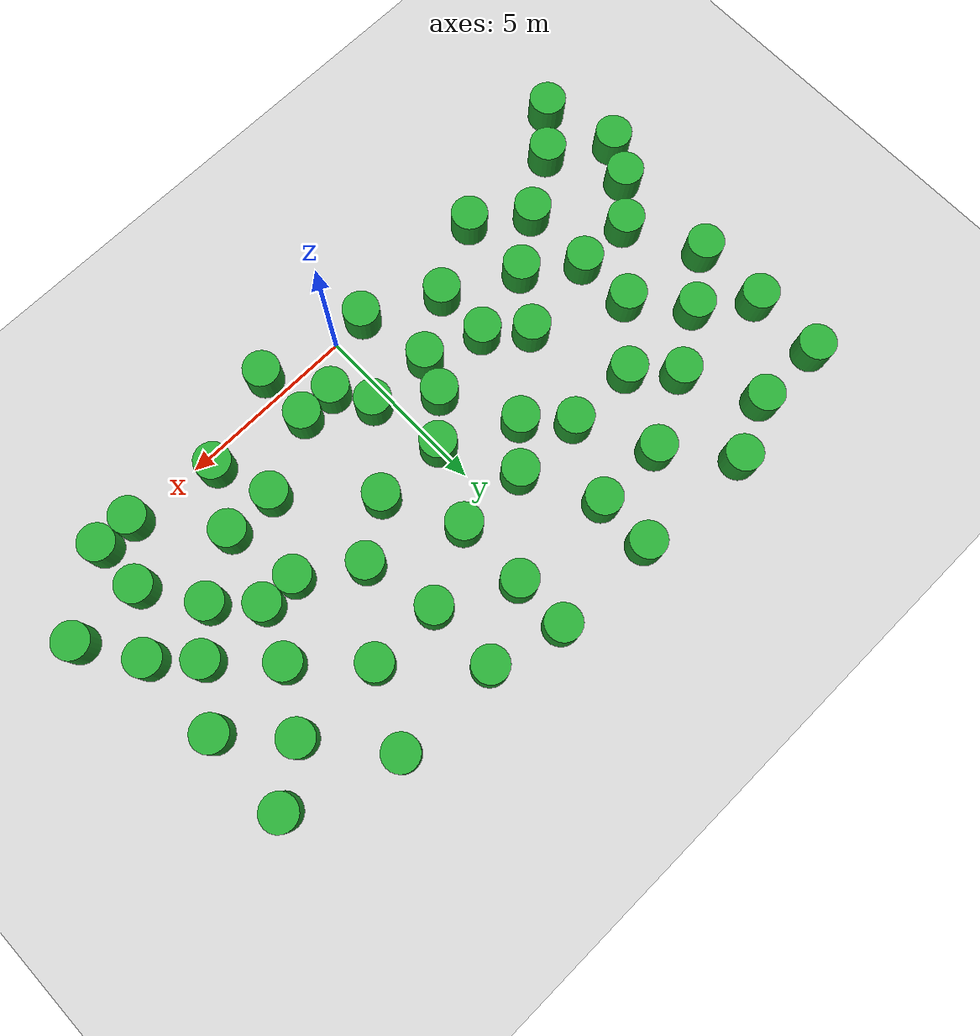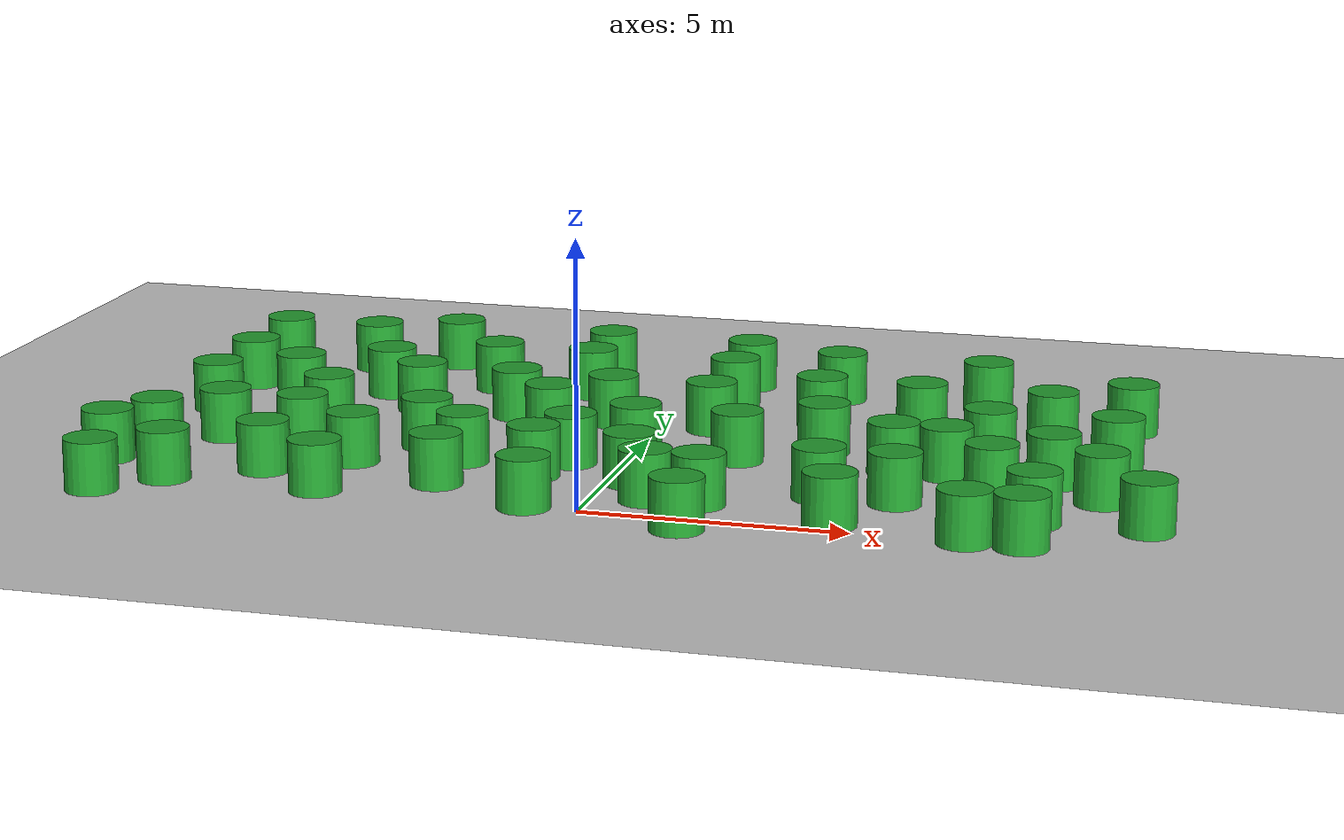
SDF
<sdf version="1.6">
 <world name="default">
  <model name="ground_plane">
   <static>1</static>
   <link name="link">
    <collision name="collision">
     <geometry><plane><normal>0 0 1</normal><size>100 100</size></plane></geometry>
     <surface><friction><ode><mu>100</mu><mu2>50</mu2></ode></friction></surface>
    </collision>
    <visual name="visual">
     <cast_shadows>0</cast_shadows>
     <geometry><plane><normal>0 0 1</normal><size>100 100</size></plane></geometry>
     <material>
      <script><uri>file://media/materials/scripts/gazebo.material</uri><name>Gazebo/Gray</name></script>
     </material>
    </visual>
   </link>
  </model>
  <model name="unit_cylinder_clone_9">
   <pose>-8 -3e-06 0.499997 3e-06 1e-06 -0</pose>
   <link name="link">
    <inertial>
     <mass>1</mass>
     <inertia><ixx>0.145833</ixx><ixy>0</ixy><ixz>0</ixz><iyy>0.145833</iyy><iyz>0</iyz><izz>0.125</izz></inertia>
    </inertial>
    <collision name="collision">
     <geometry><cylinder><radius>0.5</radius><length>1</length></cylinder></geometry>
    </collision>
    <visual name="visual">
     <geometry><cylinder><radius>0.5</radius><length>1</length></cylinder></geometry>
     <material>
      <script><name>Gazebo/Green</name><uri>file://media/materials/scripts/gazebo.material</uri></script>
     </material>
    </visual>
   </link>
  </model>
  <model name="unit_cylinder_clone_10">
   <pose>-6.41645 1 0.499997 3e-06 1e-06 -0</pose>
   <link name="link">
    <inertial>
     <mass>1</mass>
     <inertia><ixx>0.145833</ixx><ixy>0</ixy><ixz>0</ixz><iyy>0.145833</iyy><iyz>0</iyz><izz>0.125</izz></inertia>
    </inertial>
    <collision name="collision">
     <geometry><cylinder><radius>0.5</radius><length>1</length></cylinder></geometry>
    </collision>
    <visual name="visual">
     <geometry><cylinder><radius>0.5</radius><length>1</length></cylinder></geometry>
     <material>
      <script><name>Gazebo/Green</name><uri>file://media/materials/scripts/gazebo.material</uri></script>
     </material>
    </visual>
   </link>
  </model>
  <model name="unit_cylinder_clone_11">
   <pose>-5 2 0.499994 -3e-06 -2e-06 0</pose>
   <link name="link">
    <inertial>
     <mass>1</mass>
     <inertia><ixx>0.145833</ixx><ixy>0</ixy><ixz>0</ixz><iyy>0.145833</iyy><iyz>0</iyz><izz>0.125</izz></inertia>
    </inertial>
    <collision name="collision">
     <geometry><cylinder><radius>0.5</radius><length>1</length></cylinder></geometry>
    </collision>
    <visual name="visual">
     <geometry><cylinder><radius>0.5</radius><length>1</length></cylinder></geometry>
     <material>
      <script><name>Gazebo/Green</name><uri>file://media/materials/scripts/gazebo.material</uri></script>
     </material>
    </visual>
   </link>
  </model>
  <model name="unit_cylinder_clone_12">
   <pose>-3 1 0.499997 3e-06 1e-06 -0</pose>
   <link name="link">
    <inertial>
     <mass>1</mass>
     <inertia><ixx>0.145833</ixx><ixy>0</ixy><ixz>0</ixz><iyy>0.145833</iyy><iyz>0</iyz><izz>0.125</izz></inertia>
    </inertial>
    <collision name="collision">
     <geometry><cylinder><radius>0.5</radius><length>1</length></cylinder></geometry>
    </collision>
    <visual name="visual">
     <geometry><cylinder><radius>0.5</radius><length>1</length></cylinder></geometry>
     <material>
      <script><name>Gazebo/Green</name><uri>file://media/materials/scripts/gazebo.material</uri></script>
     </material>
    </visual>
   </link>
  </model>
  <model name="unit_cylinder_clone_13">
   <pose>-1 -3e-06 0.499996 3e-06 1e-06 -0</pose>
   <link name="link">
    <inertial>
     <mass>1</mass>
     <inertia><ixx>0.145833</ixx><ixy>0</ixy><ixz>0</ixz><iyy>0.145833</iyy><iyz>0</iyz><izz>0.125</izz></inertia>
    </inertial>
    <collision name="collision">
     <geometry><cylinder><radius>0.5</radius><length>1</length></cylinder></geometry>
    </collision>
    <visual name="visual">
     <geometry><cylinder><radius>0.5</radius><length>1</length></cylinder></geometry>
     <material>
      <script><name>Gazebo/Green</name><uri>file://media/materials/scripts/gazebo.material</uri></script>
     </material>
    </visual>
   </link>
  </model>
  <model name="unit_cylinder_clone_22">
   <pose>7.00001 -0 0.499997 3e-06 2e-06 0</pose>
   <link name="link">
    <inertial>
     <mass>1</mass>
     <inertia><ixx>0.145833</ixx><ixy>0</ixy><ixz>0</ixz><iyy>0.145833</iyy><iyz>0</iyz><izz>0.125</izz></inertia>
    </inertial>
    <collision name="collision">
     <geometry><cylinder><radius>0.5</radius><length>1</length></cylinder></geometry>
    </collision>
    <visual name="visual">
     <geometry><cylinder><radius>0.5</radius><length>1</length></cylinder></geometry>
     <material>
      <script><name>Gazebo/Green</name><uri>file://media/materials/scripts/gazebo.material</uri></script>
     </material>
    </visual>
   </link>
  </model>
  <model name="unit_cylinder_clone_23">
   <pose>8.00001 0 0.5 0 0 -4e-06</pose>
   <link name="link">
    <inertial>
     <mass>1</mass>
     <inertia><ixx>0.145833</ixx><ixy>0</ixy><ixz>0</ixz><iyy>0.145833</iyy><iyz>0</iyz><izz>0.125</izz></inertia>
    </inertial>
    <collision name="collision">
     <geometry><cylinder><radius>0.5</radius><length>1</length></cylinder></geometry>
    </collision>
    <visual name="visual">
     <geometry><cylinder><radius>0.5</radius><length>1</length></cylinder></geometry>
     <material>
      <script><name>Gazebo/Green</name><uri>file://media/materials/scripts/gazebo.material</uri></script>
     </material>
    </visual>
   </link>
  </model>
  <model name="unit_cylinder_clone_24">
   <pose>8 4 0.499997 3e-06 2e-06 0</pose>
   <link name="link">
    <inertial>
     <mass>1</mass>
     <inertia><ixx>0.145833</ixx><ixy>0</ixy><ixz>0</ixz><iyy>0.145833</iyy><iyz>0</iyz><izz>0.125</izz></inertia>
    </inertial>
    <collision name="collision">
     <geometry><cylinder><radius>0.5</radius><length>1</length></cylinder></geometry>
    </collision>
    <visual name="visual">
     <geometry><cylinder><radius>0.5</radius><length>1</length></cylinder></geometry>
     <material>
      <script><name>Gazebo/Green</name><uri>file://media/materials/scripts/gazebo.material</uri></script>
     </material>
    </visual>
   </link>
  </model>
  <model name="unit_cylinder_clone_25">
   <pose>5 4 0.49837 3e-06 2e-06 0</pose>
   <link name="link">
    <inertial>
     <mass>1</mass>
     <inertia><ixx>0.145833</ixx><ixy>0</ixy><ixz>0</ixz><iyy>0.145833</iyy><iyz>0</iyz><izz>0.125</izz></inertia>
    </inertial>
    <collision name="collision">
     <geometry><cylinder><radius>0.5</radius><length>1</length></cylinder></geometry>
    </collision>
    <visual name="visual">
     <geometry><cylinder><radius>0.5</radius><length>1</length></cylinder></geometry>
     <material>
      <script><name>Gazebo/Green</name><uri>file://media/materials/scripts/gazebo.material</uri></script>
     </material>
    </visual>
   </link>
  </model>
  <model name="unit_cylinder_clone_26">
   <pose>4 2 0.499994 -3e-06 -2e-06 0</pose>
   <link name="link">
    <inertial>
     <mass>1</mass>
     <inertia><ixx>0.145833</ixx><ixy>0</ixy><ixz>0</ixz><iyy>0.145833</iyy><iyz>0</iyz><izz>0.125</izz></inertia>
    </inertial>
    <collision name="collision">
     <geometry><cylinder><radius>0.5</radius><length>1</length></cylinder></geometry>
    </collision>
    <visual name="visual">
     <geometry><cylinder><radius>0.5</radius><length>1</length></cylinder></geometry>
     <material>
      <script><name>Gazebo/Green</name><uri>file://media/materials/scripts/gazebo.material</uri></script>
     </material>
    </visual>
   </link>
  </model>
  <model name="unit_cylinder_clone_27">
   <pose>2 4 0.499994 -3e-06 -2e-06 0</pose>
   <link name="link">
    <inertial>
     <mass>1</mass>
     <inertia><ixx>0.145833</ixx><ixy>0</ixy><ixz>0</ixz><iyy>0.145833</iyy><iyz>0</iyz><izz>0.125</izz></inertia>
    </inertial>
    <collision name="collision">
     <geometry><cylinder><radius>0.5</radius><length>1</length></cylinder></geometry>
    </collision>
    <visual name="visual">
     <geometry><cylinder><radius>0.5</radius><length>1</length></cylinder></geometry>
     <material>
      <script><name>Gazebo/Green</name><uri>file://media/materials/scripts/gazebo.material</uri></script>
     </material>
    </visual>
   </link>
  </model>
  <model name="unit_cylinder_clone_28">
   <pose>-2 5 0.499994 -3e-06 -2e-06 0</pose>
   <link name="link">
    <inertial>
     <mass>1</mass>
     <inertia><ixx>0.145833</ixx><ixy>0</ixy><ixz>0</ixz><iyy>0.145833</iyy><iyz>0</iyz><izz>0.125</izz></inertia>
    </inertial>
    <collision name="collision">
     <geometry><cylinder><radius>0.5</radius><length>1</length></cylinder></geometry>
    </collision>
    <visual name="visual">
     <geometry><cylinder><radius>0.5</radius><length>1</length></cylinder></geometry>
     <material>
      <script><name>Gazebo/Green</name><uri>file://media/materials/scripts/gazebo.material</uri></script>
     </material>
    </visual>
   </link>
  </model>
  <model name="unit_cylinder_clone_29">
   <pose>-5 6 0.499997 3e-06 2e-06 0</pose>
   <link name="link">
    <inertial>
     <mass>1</mass>
     <inertia><ixx>0.145833</ixx><ixy>0</ixy><ixz>0</ixz><iyy>0.145833</iyy><iyz>0</iyz><izz>0.125</izz></inertia>
    </inertial>
    <collision name="collision">
     <geometry><cylinder><radius>0.5</radius><length>1</length></cylinder></geometry>
    </collision>
    <visual name="visual">
     <geometry><cylinder><radius>0.5</radius><length>1</length></cylinder></geometry>
     <material>
      <script><name>Gazebo/Green</name><uri>file://media/materials/scripts/gazebo.material</uri></script>
     </material>
    </visual>
   </link>
  </model>
  <model name="unit_cylinder_clone_30">
   <pose>-6.45436 4.56526 0.499997 4e-06 2e-06 -0</pose>
   <link name="link">
    <inertial>
     <mass>1</mass>
     <inertia><ixx>0.145833</ixx><ixy>0</ixy><ixz>0</ixz><iyy>0.145833</iyy><iyz>0</iyz><izz>0.125</izz></inertia>
    </inertial>
    <collision name="collision">
     <geometry><cylinder><radius>0.5</radius><length>1</length></cylinder></geometry>
    </collision>
    <visual name="visual">
     <geometry><cylinder><radius>0.5</radius><length>1</length></cylinder></geometry>
     <material>
      <script><name>Gazebo/Green</name><uri>file://media/materials/scripts/gazebo.material</uri></script>
     </material>
    </visual>
   </link>
  </model>
  <model name="unit_cylinder_clone_31">
   <pose>-7.59942 6 0.499997 3e-06 2e-06 0</pose>
   <link name="link">
    <inertial>
     <mass>1</mass>
     <inertia><ixx>0.145833</ixx><ixy>0</ixy><ixz>0</ixz><iyy>0.145833</iyy><iyz>0</iyz><izz>0.125</izz></inertia>
    </inertial>
    <collision name="collision">
     <geometry><cylinder><radius>0.5</radius><length>1</length></cylinder></geometry>
    </collision>
    <visual name="visual">
     <geometry><cylinder><radius>0.5</radius><length>1</length></cylinder></geometry>
     <material>
      <script><name>Gazebo/Green</name><uri>file://media/materials/scripts/gazebo.material</uri></script>
     </material>
    </visual>
   </link>
  </model>
  <model name="unit_cylinder_clone_32">
   <pose>-2 8 0.499994 -3e-06 -2e-06 0</pose>
   <link name="link">
    <inertial>
     <mass>1</mass>
     <inertia><ixx>0.145833</ixx><ixy>0</ixy><ixz>0</ixz><iyy>0.145833</iyy><iyz>0</iyz><izz>0.125</izz></inertia>
    </inertial>
    <collision name="collision">
     <geometry><cylinder><radius>0.5</radius><length>1</length></cylinder></geometry>
    </collision>
    <visual name="visual">
     <geometry><cylinder><radius>0.5</radius><length>1</length></cylinder></geometry>
     <material>
      <script><name>Gazebo/Green</name><uri>file://media/materials/scripts/gazebo.material</uri></script>
     </material>
    </visual>
   </link>
  </model>
  <model name="unit_cylinder_clone_33">
   <pose>0.999998 8 0.499994 -3e-06 -2e-06 0</pose>
   <link name="link">
    <inertial>
     <mass>1</mass>
     <inertia><ixx>0.145833</ixx><ixy>0</ixy><ixz>0</ixz><iyy>0.145833</iyy><iyz>0</iyz><izz>0.125</izz></inertia>
    </inertial>
    <collision name="collision">
     <geometry><cylinder><radius>0.5</radius><length>1</length></cylinder></geometry>
    </collision>
    <visual name="visual">
     <geometry><cylinder><radius>0.5</radius><length>1</length></cylinder></geometry>
     <material>
      <script><name>Gazebo/Green</name><uri>file://media/materials/scripts/gazebo.material</uri></script>
     </material>
    </visual>
   </link>
  </model>
  <model name="unit_cylinder_clone_34">
   <pose>3 7 0.499994 -3e-06 -2e-06 0</pose>
   <link name="link">
    <inertial>
     <mass>1</mass>
     <inertia><ixx>0.145833</ixx><ixy>0</ixy><ixz>0</ixz><iyy>0.145833</iyy><iyz>0</iyz><izz>0.125</izz></inertia>
    </inertial>
    <collision name="collision">
     <geometry><cylinder><radius>0.5</radius><length>1</length></cylinder></geometry>
    </collision>
    <visual name="visual">
     <geometry><cylinder><radius>0.5</radius><length>1</length></cylinder></geometry>
     <material>
      <script><name>Gazebo/Green</name><uri>file://media/materials/scripts/gazebo.material</uri></script>
     </material>
    </visual>
   </link>
  </model>
  <model name="unit_cylinder_clone_35">
   <pose>5 7 0.499997 4e-06 3e-06 -0</pose>
   <link name="link">
    <inertial>
     <mass>1</mass>
     <inertia><ixx>0.145833</ixx><ixy>0</ixy><ixz>0</ixz><iyy>0.145833</iyy><iyz>0</iyz><izz>0.125</izz></inertia>
    </inertial>
    <collision name="collision">
     <geometry><cylinder><radius>0.5</radius><length>1</length></cylinder></geometry>
    </collision>
    <visual name="visual">
     <geometry><cylinder><radius>0.5</radius><length>1</length></cylinder></geometry>
     <material>
      <script><name>Gazebo/Green</name><uri>file://media/materials/scripts/gazebo.material</uri></script>
     </material>
    </visual>
   </link>
  </model>
  <model name="unit_cylinder_clone_36">
   <pose>7.57121 7 0.499994 -4e-06 -3e-06 -0</pose>
   <link name="link">
    <inertial>
     <mass>1</mass>
     <inertia><ixx>0.145833</ixx><ixy>0</ixy><ixz>0</ixz><iyy>0.145833</iyy><iyz>0</iyz><izz>0.125</izz></inertia>
    </inertial>
    <collision name="collision">
     <geometry><cylinder><radius>0.5</radius><length>1</length></cylinder></geometry>
    </collision>
    <visual name="visual">
     <geometry><cylinder><radius>0.5</radius><length>1</length></cylinder></geometry>
     <material>
      <script><name>Gazebo/Green</name><uri>file://media/materials/scripts/gazebo.material</uri></script>
     </material>
    </visual>
   </link>
  </model>
  <model name="unit_cylinder_clone_37">
   <pose>9 5.48575 0.499997 3e-06 2e-06 0</pose>
   <link name="link">
    <inertial>
     <mass>1</mass>
     <inertia><ixx>0.145833</ixx><ixy>0</ixy><ixz>0</ixz><iyy>0.145833</iyy><iyz>0</iyz><izz>0.125</izz></inertia>
    </inertial>
    <collision name="collision">
     <geometry><cylinder><radius>0.5</radius><length>1</length></cylinder></geometry>
    </collision>
    <visual name="visual">
     <geometry><cylinder><radius>0.5</radius><length>1</length></cylinder></geometry>
     <material>
      <script><name>Gazebo/Green</name><uri>file://media/materials/scripts/gazebo.material</uri></script>
     </material>
    </visual>
   </link>
  </model>
  <model name="unit_cylinder_clone_38">
   <pose>10 1.46428 0.499997 4e-06 3e-06 -0</pose>
   <link name="link">
    <inertial>
     <mass>1</mass>
     <inertia><ixx>0.145833</ixx><ixy>0</ixy><ixz>0</ixz><iyy>0.145833</iyy><iyz>0</iyz><izz>0.125</izz></inertia>
    </inertial>
    <collision name="collision">
     <geometry><cylinder><radius>0.5</radius><length>1</length></cylinder></geometry>
    </collision>
    <visual name="visual">
     <geometry><cylinder><radius>0.5</radius><length>1</length></cylinder></geometry>
     <material>
      <script><name>Gazebo/Green</name><uri>file://media/materials/scripts/gazebo.material</uri></script>
     </material>
    </visual>
   </link>
  </model>
  <model name="unit_cylinder_clone_39">
   <pose>8 1.4506 0.499998 3e-06 4e-06 -0</pose>
   <link name="link">
    <inertial>
     <mass>1</mass>
     <inertia><ixx>0.145833</ixx><ixy>0</ixy><ixz>0</ixz><iyy>0.145833</iyy><iyz>0</iyz><izz>0.125</izz></inertia>
    </inertial>
    <collision name="collision">
     <geometry><cylinder><radius>0.5</radius><length>1</length></cylinder></geometry>
    </collision>
    <visual name="visual">
     <geometry><cylinder><radius>0.5</radius><length>1</length></cylinder></geometry>
     <material>
      <script><name>Gazebo/Green</name><uri>file://media/materials/scripts/gazebo.material</uri></script>
     </material>
    </visual>
   </link>
  </model>
  <model name="unit_cylinder_clone_40">
   <pose>4.53447 0.412107 0.499997 4e-06 3e-06 -0</pose>
   <link name="link">
    <inertial>
     <mass>1</mass>
     <inertia><ixx>0.145833</ixx><ixy>0</ixy><ixz>0</ixz><iyy>0.145833</iyy><iyz>0</iyz><izz>0.125</izz></inertia>
    </inertial>
    <collision name="collision">
     <geometry><cylinder><radius>0.5</radius><length>1</length></cylinder></geometry>
    </collision>
    <visual name="visual">
     <geometry><cylinder><radius>0.5</radius><length>1</length></cylinder></geometry>
     <material>
      <script><name>Gazebo/Green</name><uri>file://media/materials/scripts/gazebo.material</uri></script>
     </material>
    </visual>
   </link>
  </model>
  <model name="unit_cylinder_clone_44">
   <pose>2 -0.574814 0.499994 -4e-06 -3e-06 -0</pose>
   <link name="link">
    <inertial>
     <mass>1</mass>
     <inertia><ixx>0.145833</ixx><ixy>0</ixy><ixz>0</ixz><iyy>0.145833</iyy><iyz>0</iyz><izz>0.125</izz></inertia>
    </inertial>
    <collision name="collision">
     <geometry><cylinder><radius>0.5</radius><length>1</length></cylinder></geometry>
    </collision>
    <visual name="visual">
     <geometry><cylinder><radius>0.5</radius><length>1</length></cylinder></geometry>
     <material>
      <script><name>Gazebo/Green</name><uri>file://media/materials/scripts/gazebo.material</uri></script>
     </material>
    </visual>
   </link>
  </model>
  <model name="unit_cylinder_clone_45">
   <pose>1 1 0.499996 4e-06 2e-06 -1e-06</pose>
   <link name="link">
    <inertial>
     <mass>1</mass>
     <inertia><ixx>0.145833</ixx><ixy>0</ixy><ixz>0</ixz><iyy>0.145833</iyy><iyz>0</iyz><izz>0.125</izz></inertia>
    </inertial>
    <collision name="collision">
     <geometry><cylinder><radius>0.5</radius><length>1</length></cylinder></geometry>
    </collision>
    <visual name="visual">
     <geometry><cylinder><radius>0.5</radius><length>1</length></cylinder></geometry>
     <material>
      <script><name>Gazebo/Green</name><uri>file://media/materials/scripts/gazebo.material</uri></script>
     </material>
    </visual>
   </link>
  </model>
  <model name="unit_cylinder_clone_46">
   <pose>0.43835 2 0.499997 4e-06 3e-06 -0</pose>
   <link name="link">
    <inertial>
     <mass>1</mass>
     <inertia><ixx>0.145833</ixx><ixy>0</ixy><ixz>0</ixz><iyy>0.145833</iyy><iyz>0</iyz><izz>0.125</izz></inertia>
    </inertial>
    <collision name="collision">
     <geometry><cylinder><radius>0.5</radius><length>1</length></cylinder></geometry>
    </collision>
    <visual name="visual">
     <geometry><cylinder><radius>0.5</radius><length>1</length></cylinder></geometry>
     <material>
      <script><name>Gazebo/Green</name><uri>file://media/materials/scripts/gazebo.material</uri></script>
     </material>
    </visual>
   </link>
  </model>
  <model name="unit_cylinder_clone_47">
   <pose>-1 3 0.499994 -4e-06 -4e-06 -0</pose>
   <link name="link">
    <inertial>
     <mass>1</mass>
     <inertia><ixx>0.145833</ixx><ixy>0</ixy><ixz>0</ixz><iyy>0.145833</iyy><iyz>0</iyz><izz>0.125</izz></inertia>
    </inertial>
    <collision name="collision">
     <geometry><cylinder><radius>0.5</radius><length>1</length></cylinder></geometry>
    </collision>
    <visual name="visual">
     <geometry><cylinder><radius>0.5</radius><length>1</length></cylinder></geometry>
     <material>
      <script><name>Gazebo/Green</name><uri>file://media/materials/scripts/gazebo.material</uri></script>
     </material>
    </visual>
   </link>
  </model>
  <model name="unit_cylinder_clone_48">
   <pose>-4 3.40442 0.499998 3e-06 -2e-06 0</pose>
   <link name="link">
    <inertial>
     <mass>1</mass>
     <inertia><ixx>0.145833</ixx><ixy>0</ixy><ixz>0</ixz><iyy>0.145833</iyy><iyz>0</iyz><izz>0.125</izz></inertia>
    </inertial>
    <collision name="collision">
     <geometry><cylinder><radius>0.5</radius><length>1</length></cylinder></geometry>
    </collision>
    <visual name="visual">
     <geometry><cylinder><radius>0.5</radius><length>1</length></cylinder></geometry>
     <material>
      <script><name>Gazebo/Green</name><uri>file://media/materials/scripts/gazebo.material</uri></script>
     </material>
    </visual>
   </link>
  </model>
  <model name="unit_cylinder_clone_49">
   <pose>-8 3 0.499992 -3e-06 2e-06 0</pose>
   <link name="link">
    <inertial>
     <mass>1</mass>
     <inertia><ixx>0.145833</ixx><ixy>0</ixy><ixz>0</ixz><iyy>0.145833</iyy><iyz>0</iyz><izz>0.125</izz></inertia>
    </inertial>
    <collision name="collision">
     <geometry><cylinder><radius>0.5</radius><length>1</length></cylinder></geometry>
    </collision>
    <visual name="visual">
     <geometry><cylinder><radius>0.5</radius><length>1</length></cylinder></geometry>
     <material>
      <script><name>Gazebo/Green</name><uri>file://media/materials/scripts/gazebo.material</uri></script>
     </material>
    </visual>
   </link>
  </model>
  <model name="unit_cylinder_clone_50">
   <pose>-7 9 0.499998 3e-06 -2e-06 0</pose>
   <link name="link">
    <inertial>
     <mass>1</mass>
     <inertia><ixx>0.145833</ixx><ixy>0</ixy><ixz>0</ixz><iyy>0.145833</iyy><iyz>0</iyz><izz>0.125</izz></inertia>
    </inertial>
    <collision name="collision">
     <geometry><cylinder><radius>0.5</radius><length>1</length></cylinder></geometry>
    </collision>
    <visual name="visual">
     <geometry><cylinder><radius>0.5</radius><length>1</length></cylinder></geometry>
     <material>
      <script><name>Gazebo/Green</name><uri>file://media/materials/scripts/gazebo.material</uri></script>
     </material>
    </visual>
   </link>
  </model>
  <model name="unit_cylinder_clone_51">
   <pose>-5.40133 9.69105 0.499998 3e-06 -2e-06 0</pose>
   <link name="link">
    <inertial>
     <mass>1</mass>
     <inertia><ixx>0.145833</ixx><ixy>0</ixy><ixz>0</ixz><iyy>0.145833</iyy><iyz>0</iyz><izz>0.125</izz></inertia>
    </inertial>
    <collision name="collision">
     <geometry><cylinder><radius>0.5</radius><length>1</length></cylinder></geometry>
    </collision>
    <visual name="visual">
     <geometry><cylinder><radius>0.5</radius><length>1</length></cylinder></geometry>
     <material>
      <script><name>Gazebo/Green</name><uri>file://media/materials/scripts/gazebo.material</uri></script>
     </material>
    </visual>
   </link>
  </model>
  <model name="unit_cylinder_clone_52">
   <pose>-4 8 0.499998 3e-06 4e-06 -0</pose>
   <link name="link">
    <inertial>
     <mass>1</mass>
     <inertia><ixx>0.145833</ixx><ixy>0</ixy><ixz>0</ixz><iyy>0.145833</iyy><iyz>0</iyz><izz>0.125</izz></inertia>
    </inertial>
    <collision name="collision">
     <geometry><cylinder><radius>0.5</radius><length>1</length></cylinder></geometry>
    </collision>
    <visual name="visual">
     <geometry><cylinder><radius>0.5</radius><length>1</length></cylinder></geometry>
     <material>
      <script><name>Gazebo/Green</name><uri>file://media/materials/scripts/gazebo.material</uri></script>
     </material>
    </visual>
   </link>
  </model>
  <model name="unit_cylinder_clone_53">
   <pose>-3 6 0.499998 3e-06 -2e-06 0</pose>
   <link name="link">
    <inertial>
     <mass>1</mass>
     <inertia><ixx>0.145833</ixx><ixy>0</ixy><ixz>0</ixz><iyy>0.145833</iyy><iyz>0</iyz><izz>0.125</izz></inertia>
    </inertial>
    <collision name="collision">
     <geometry><cylinder><radius>0.5</radius><length>1</length></cylinder></geometry>
    </collision>
    <visual name="visual">
     <geometry><cylinder><radius>0.5</radius><length>1</length></cylinder></geometry>
     <material>
      <script><name>Gazebo/Green</name><uri>file://media/materials/scripts/gazebo.material</uri></script>
     </material>
    </visual>
   </link>
  </model>
  <model name="unit_cylinder_clone_54">
   <pose>-1 6 0.499992 -3e-06 -4e-06 -0</pose>
   <link name="link">
    <inertial>
     <mass>1</mass>
     <inertia><ixx>0.145833</ixx><ixy>0</ixy><ixz>0</ixz><iyy>0.145833</iyy><iyz>0</iyz><izz>0.125</izz></inertia>
    </inertial>
    <collision name="collision">
     <geometry><cylinder><radius>0.5</radius><length>1</length></cylinder></geometry>
    </collision>
    <visual name="visual">
     <geometry><cylinder><radius>0.5</radius><length>1</length></cylinder></geometry>
     <material>
      <script><name>Gazebo/Green</name><uri>file://media/materials/scripts/gazebo.material</uri></script>
     </material>
    </visual>
   </link>
  </model>
  <model name="unit_cylinder_clone_55">
   <pose>0.999998 6 0.499992 -3e-06 -4e-06 -0</pose>
   <link name="link">
    <inertial>
     <mass>1</mass>
     <inertia><ixx>0.145833</ixx><ixy>0</ixy><ixz>0</ixz><iyy>0.145833</iyy><iyz>0</iyz><izz>0.125</izz></inertia>
    </inertial>
    <collision name="collision">
     <geometry><cylinder><radius>0.5</radius><length>1</length></cylinder></geometry>
    </collision>
    <visual name="visual">
     <geometry><cylinder><radius>0.5</radius><length>1</length></cylinder></geometry>
     <material>
      <script><name>Gazebo/Green</name><uri>file://media/materials/scripts/gazebo.material</uri></script>
     </material>
    </visual>
   </link>
  </model>
  <model name="unit_cylinder_clone_56">
   <pose>3.46631 5 0.499992 -3e-06 -4e-06 -0</pose>
   <link name="link">
    <inertial>
     <mass>1</mass>
     <inertia><ixx>0.145833</ixx><ixy>0</ixy><ixz>0</ixz><iyy>0.145833</iyy><iyz>0</iyz><izz>0.125</izz></inertia>
    </inertial>
    <collision name="collision">
     <geometry><cylinder><radius>0.5</radius><length>1</length></cylinder></geometry>
    </collision>
    <visual name="visual">
     <geometry><cylinder><radius>0.5</radius><length>1</length></cylinder></geometry>
     <material>
      <script><name>Gazebo/Green</name><uri>file://media/materials/scripts/gazebo.material</uri></script>
     </material>
    </visual>
   </link>
  </model>
  <model name="unit_cylinder_clone_57">
   <pose>6.59197 5.44027 0.499992 -3e-06 2e-06 0</pose>
   <link name="link">
    <inertial>
     <mass>1</mass>
     <inertia><ixx>0.145833</ixx><ixy>0</ixy><ixz>0</ixz><iyy>0.145833</iyy><iyz>0</iyz><izz>0.125</izz></inertia>
    </inertial>
    <collision name="collision">
     <geometry><cylinder><radius>0.5</radius><length>1</length></cylinder></geometry>
    </collision>
    <visual name="visual">
     <geometry><cylinder><radius>0.5</radius><length>1</length></cylinder></geometry>
     <material>
      <script><name>Gazebo/Green</name><uri>file://media/materials/scripts/gazebo.material</uri></script>
     </material>
    </visual>
   </link>
  </model>
  <model name="unit_cylinder_clone_58">
   <pose>9 8 0.499996 3e-06 1e-06 -0</pose>
   <link name="link">
    <inertial>
     <mass>1</mass>
     <inertia><ixx>0.145833</ixx><ixy>0</ixy><ixz>0</ixz><iyy>0.145833</iyy><iyz>0</iyz><izz>0.125</izz></inertia>
    </inertial>
    <collision name="collision">
     <geometry><cylinder><radius>0.5</radius><length>1</length></cylinder></geometry>
    </collision>
    <visual name="visual">
     <geometry><cylinder><radius>0.5</radius><length>1</length></cylinder></geometry>
     <material>
      <script><name>Gazebo/Green</name><uri>file://media/materials/scripts/gazebo.material</uri></script>
     </material>
    </visual>
   </link>
  </model>
  <model name="unit_cylinder_clone_59">
   <pose>6 9 0.499994 -3e-06 -1e-06 -0</pose>
   <link name="link">
    <inertial>
     <mass>1</mass>
     <inertia><ixx>0.145833</ixx><ixy>0</ixy><ixz>0</ixz><iyy>0.145833</iyy><iyz>0</iyz><izz>0.125</izz></inertia>
    </inertial>
    <collision name="collision">
     <geometry><cylinder><radius>0.5</radius><length>1</length></cylinder></geometry>
    </collision>
    <visual name="visual">
     <geometry><cylinder><radius>0.5</radius><length>1</length></cylinder></geometry>
     <material>
      <script><name>Gazebo/Green</name><uri>file://media/materials/scripts/gazebo.material</uri></script>
     </material>
    </visual>
   </link>
  </model>
  <model name="unit_cylinder_clone_60">
   <pose>3 9 0.499994 -3e-06 -1e-06 -0</pose>
   <link name="link">
    <inertial>
     <mass>1</mass>
     <inertia><ixx>0.145833</ixx><ixy>0</ixy><ixz>0</ixz><iyy>0.145833</iyy><iyz>0</iyz><izz>0.125</izz></inertia>
    </inertial>
    <collision name="collision">
     <geometry><cylinder><radius>0.5</radius><length>1</length></cylinder></geometry>
    </collision>
    <visual name="visual">
     <geometry><cylinder><radius>0.5</radius><length>1</length></cylinder></geometry>
     <material>
      <script><name>Gazebo/Green</name><uri>file://media/materials/scripts/gazebo.material</uri></script>
     </material>
    </visual>
   </link>
  </model>
  <model name="unit_cylinder_clone_82">
   <pose>2 1 0.5 0 0 -2e-06</pose>
   <link name="link">
    <inertial>
     <mass>1</mass>
     <inertia><ixx>0.145833</ixx><ixy>0</ixy><ixz>0</ixz><iyy>0.145833</iyy><iyz>0</iyz><izz>0.125</izz></inertia>
    </inertial>
    <collision name="collision">
     <geometry><cylinder><radius>0.5</radius><length>1</length></cylinder></geometry>
    </collision>
    <visual name="visual">
     <geometry><cylinder><radius>0.5</radius><length>1</length></cylinder></geometry>
     <material>
      <script><name>Gazebo/Green</name><uri>file://media/materials/scripts/gazebo.material</uri></script>
     </material>
    </visual>
   </link>
  </model>
  <model name="unit_cylinder_clone_83">
   <pose>5.40436 2 0.499998 3e-06 -2e-06 0</pose>
   <link name="link">
    <inertial>
     <mass>1</mass>
     <inertia><ixx>0.145833</ixx><ixy>0</ixy><ixz>0</ixz><iyy>0.145833</iyy><iyz>0</iyz><izz>0.125</izz></inertia>
    </inertial>
    <collision name="collision">
     <geometry><cylinder><radius>0.5</radius><length>1</length></cylinder></geometry>
    </collision>
    <visual name="visual">
     <geometry><cylinder><radius>0.5</radius><length>1</length></cylinder></geometry>
     <material>
      <script><name>Gazebo/Green</name><uri>file://media/materials/scripts/gazebo.material</uri></script>
     </material>
    </visual>
   </link>
  </model>
  <model name="unit_cylinder_clone_84">
   <pose>7 3 0.499997 4e-06 2e-06 -0</pose>
   <link name="link">
    <inertial>
     <mass>1</mass>
     <inertia><ixx>0.145833</ixx><ixy>0</ixy><ixz>0</ixz><iyy>0.145833</iyy><iyz>0</iyz><izz>0.125</izz></inertia>
    </inertial>
    <collision name="collision">
     <geometry><cylinder><radius>0.5</radius><length>1</length></cylinder></geometry>
    </collision>
    <visual name="visual">
     <geometry><cylinder><radius>0.5</radius><length>1</length></cylinder></geometry>
     <material>
      <script><name>Gazebo/Green</name><uri>file://media/materials/scripts/gazebo.material</uri></script>
     </material>
    </visual>
   </link>
  </model>
  <model name="unit_cylinder_clone_85">
   <pose>9 3 0.499998 3e-06 -3e-06 0</pose>
   <link name="link">
    <inertial>
     <mass>1</mass>
     <inertia><ixx>0.145833</ixx><ixy>0</ixy><ixz>0</ixz><iyy>0.145833</iyy><iyz>0</iyz><izz>0.125</izz></inertia>
    </inertial>
    <collision name="collision">
     <geometry><cylinder><radius>0.5</radius><length>1</length></cylinder></geometry>
    </collision>
    <visual name="visual">
     <geometry><cylinder><radius>0.5</radius><length>1</length></cylinder></geometry>
     <material>
      <script><name>Gazebo/Green</name><uri>file://media/materials/scripts/gazebo.material</uri></script>
     </material>
    </visual>
   </link>
  </model>
  <model name="unit_cylinder_clone_91">
   <pose>-3 2.55359 0.499992 -3e-06 3e-06 0</pose>
   <link name="link">
    <inertial>
     <mass>1</mass>
     <inertia><ixx>0.145833</ixx><ixy>0</ixy><ixz>0</ixz><iyy>0.145833</iyy><iyz>0</iyz><izz>0.125</izz></inertia>
    </inertial>
    <collision name="collision">
     <geometry><cylinder><radius>0.5</radius><length>1</length></cylinder></geometry>
    </collision>
    <visual name="visual">
     <geometry><cylinder><radius>0.5</radius><length>1</length></cylinder></geometry>
     <material>
      <script><name>Gazebo/Green</name><uri>file://media/materials/scripts/gazebo.material</uri></script>
     </material>
    </visual>
   </link>
  </model>
  <model name="unit_cylinder_clone_92">
   <pose>-6.40438 3 0.499997 3e-06 1e-06 -0</pose>
   <link name="link">
    <inertial>
     <mass>1</mass>
     <inertia><ixx>0.145833</ixx><ixy>0</ixy><ixz>0</ixz><iyy>0.145833</iyy><iyz>0</iyz><izz>0.125</izz></inertia>
    </inertial>
    <collision name="collision">
     <geometry><cylinder><radius>0.5</radius><length>1</length></cylinder></geometry>
    </collision>
    <visual name="visual">
     <geometry><cylinder><radius>0.5</radius><length>1</length></cylinder></geometry>
     <material>
      <script><name>Gazebo/Green</name><uri>file://media/materials/scripts/gazebo.material</uri></script>
     </material>
    </visual>
   </link>
  </model>
  <model name="unit_cylinder_clone_93">
   <pose>-9 2 0.499993 -3e-06 -1e-06 -0</pose>
   <link name="link">
    <inertial>
     <mass>1</mass>
     <inertia><ixx>0.145833</ixx><ixy>0</ixy><ixz>0</ixz><iyy>0.145833</iyy><iyz>0</iyz><izz>0.125</izz></inertia>
    </inertial>
    <collision name="collision">
     <geometry><cylinder><radius>0.5</radius><length>1</length></cylinder></geometry>
    </collision>
    <visual name="visual">
     <geometry><cylinder><radius>0.5</radius><length>1</length></cylinder></geometry>
     <material>
      <script><name>Gazebo/Green</name><uri>file://media/materials/scripts/gazebo.material</uri></script>
     </material>
    </visual>
   </link>
  </model>
  <model name="unit_cylinder_clone_94">
   <pose>-9 5 0.499996 3e-06 1e-06 -0</pose>
   <link name="link">
    <inertial>
     <mass>1</mass>
     <inertia><ixx>0.145833</ixx><ixy>0</ixy><ixz>0</ixz><iyy>0.145833</iyy><iyz>0</iyz><izz>0.125</izz></inertia>
    </inertial>
    <collision name="collision">
     <geometry><cylinder><radius>0.5</radius><length>1</length></cylinder></geometry>
    </collision>
    <visual name="visual">
     <geometry><cylinder><radius>0.5</radius><length>1</length></cylinder></geometry>
     <material>
      <script><name>Gazebo/Green</name><uri>file://media/materials/scripts/gazebo.material</uri></script>
     </material>
    </visual>
   </link>
  </model>
  <model name="unit_cylinder_clone_95">
   <pose>-9 7 0.499992 -3e-06 3e-06 0</pose>
   <link name="link">
    <inertial>
     <mass>1</mass>
     <inertia><ixx>0.145833</ixx><ixy>0</ixy><ixz>0</ixz><iyy>0.145833</iyy><iyz>0</iyz><izz>0.125</izz></inertia>
    </inertial>
    <collision name="collision">
     <geometry><cylinder><radius>0.5</radius><length>1</length></cylinder></geometry>
    </collision>
    <visual name="visual">
     <geometry><cylinder><radius>0.5</radius><length>1</length></cylinder></geometry>
     <material>
      <script><name>Gazebo/Green</name><uri>file://media/materials/scripts/gazebo.material</uri></script>
     </material>
    </visual>
   </link>
  </model>
  <model name="unit_cylinder_clone_96">
   <pose>-9 9 0.499996 3e-06 1e-06 -0</pose>
   <link name="link">
    <inertial>
     <mass>1</mass>
     <inertia><ixx>0.145833</ixx><ixy>0</ixy><ixz>0</ixz><iyy>0.145833</iyy><iyz>0</iyz><izz>0.125</izz></inertia>
    </inertial>
    <collision name="collision">
     <geometry><cylinder><radius>0.5</radius><length>1</length></cylinder></geometry>
    </collision>
    <visual name="visual">
     <geometry><cylinder><radius>0.5</radius><length>1</length></cylinder></geometry>
     <material>
      <script><name>Gazebo/Green</name><uri>file://media/materials/scripts/gazebo.material</uri></script>
     </material>
    </visual>
   </link>
  </model>
  <model name="unit_cylinder_clone_97">
   <pose>-6 7 0.499998 3e-06 -3e-06 0</pose>
   <link name="link">
    <inertial>
     <mass>1</mass>
     <inertia><ixx>0.145833</ixx><ixy>0</ixy><ixz>0</ixz><iyy>0.145833</iyy><iyz>0</iyz><izz>0.125</izz></inertia>
    </inertial>
    <collision name="collision">
     <geometry><cylinder><radius>0.5</radius><length>1</length></cylinder></geometry>
    </collision>
    <visual name="visual">
     <geometry><cylinder><radius>0.5</radius><length>1</length></cylinder></geometry>
     <material>
      <script><name>Gazebo/Green</name><uri>file://media/materials/scripts/gazebo.material</uri></script>
     </material>
    </visual>
   </link>
  </model>
  <model name="unit_cylinder_clone_98">
   <pose>-2 9.54563 0.499997 3e-06 1e-06 -0</pose>
   <link name="link">
    <inertial>
     <mass>1</mass>
     <inertia><ixx>0.145833</ixx><ixy>0</ixy><ixz>0</ixz><iyy>0.145833</iyy><iyz>0</iyz><izz>0.125</izz></inertia>
    </inertial>
    <collision name="collision">
     <geometry><cylinder><radius>0.5</radius><length>1</length></cylinder></geometry>
    </collision>
    <visual name="visual">
     <geometry><cylinder><radius>0.5</radius><length>1</length></cylinder></geometry>
     <material>
      <script><name>Gazebo/Green</name><uri>file://media/materials/scripts/gazebo.material</uri></script>
     </material>
    </visual>
   </link>
  </model>
  <model name="unit_cylinder_clone_99">
   <pose>0.999998 9.51886 0.499993 -3e-06 -1e-06 -0</pose>
   <link name="link">
    <inertial>
     <mass>1</mass>
     <inertia><ixx>0.145833</ixx><ixy>0</ixy><ixz>0</ixz><iyy>0.145833</iyy><iyz>0</iyz><izz>0.125</izz></inertia>
    </inertial>
    <collision name="collision">
     <geometry><cylinder><radius>0.5</radius><length>1</length></cylinder></geometry>
    </collision>
    <visual name="visual">
     <geometry><cylinder><radius>0.5</radius><length>1</length></cylinder></geometry>
     <material>
      <script><name>Gazebo/Green</name><uri>file://media/materials/scripts/gazebo.material</uri></script>
     </material>
    </visual>
   </link>
  </model>
  <model name="unit_cylinder_clone_100">
   <pose>2e-06 4 0.499992 -3e-06 4e-06 0</pose>
   <link name="link">
    <inertial>
     <mass>1</mass>
     <inertia><ixx>0.145833</ixx><ixy>0</ixy><ixz>0</ixz><iyy>0.145833</iyy><iyz>0</iyz><izz>0.125</izz></inertia>
    </inertial>
    <collision name="collision">
     <geometry><cylinder><radius>0.5</radius><length>1</length></cylinder></geometry>
    </collision>
    <visual name="visual">
     <geometry><cylinder><radius>0.5</radius><length>1</length></cylinder></geometry>
     <material>
      <script><name>Gazebo/Green</name><uri>file://media/materials/scripts/gazebo.material</uri></script>
     </material>
    </visual>
   </link>
  </model>
  <model name="unit_cylinder_clone_101">
   <pose>-9 -0.999999 0.499992 -3e-06 4e-06 0</pose>
   <link name="link">
    <inertial>
     <mass>1</mass>
     <inertia><ixx>0.145833</ixx><ixy>0</ixy><ixz>0</ixz><iyy>0.145833</iyy><iyz>0</iyz><izz>0.125</izz></inertia>
    </inertial>
    <collision name="collision">
     <geometry><cylinder><radius>0.5</radius><length>1</length></cylinder></geometry>
    </collision>
    <visual name="visual">
     <geometry><cylinder><radius>0.5</radius><length>1</length></cylinder></geometry>
     <material>
      <script><name>Gazebo/Green</name><uri>file://media/materials/scripts/gazebo.material</uri></script>
     </material>
    </visual>
   </link>
  </model>
  <model name="unit_cylinder_clone_111">
   <pose>-1.42352 2 0.499997 3e-06 4e-06 -0</pose>
   <link name="link">
    <inertial>
     <mass>1</mass>
     <inertia><ixx>0.145833</ixx><ixy>0</ixy><ixz>0</ixz><iyy>0.145833</iyy><iyz>0</iyz><izz>0.125</izz></inertia>
    </inertial>
    <collision name="collision">
     <geometry><cylinder><radius>0.5</radius><length>1</length></cylinder></geometry>
    </collision>
    <visual name="visual">
     <geometry><cylinder><radius>0.5</radius><length>1</length></cylinder></geometry>
     <material>
      <script><name>Gazebo/Green</name><uri>file://media/materials/scripts/gazebo.material</uri></script>
     </material>
    </visual>
   </link>
  </model>
  <model name="unit_cylinder_clone_112">
   <pose>-5 2e-06 0.499993 -3e-06 -4e-06 -0</pose>
   <link name="link">
    <inertial>
     <mass>1</mass>
     <inertia><ixx>0.145833</ixx><ixy>0</ixy><ixz>0</ixz><iyy>0.145833</iyy><iyz>0</iyz><izz>0.125</izz></inertia>
    </inertial>
    <collision name="collision">
     <geometry><cylinder><radius>0.5</radius><length>1</length></cylinder></geometry>
    </collision>
    <visual name="visual">
     <geometry><cylinder><radius>0.5</radius><length>1</length></cylinder></geometry>
     <material>
      <script><name>Gazebo/Green</name><uri>file://media/materials/scripts/gazebo.material</uri></script>
     </material>
    </visual>
   </link>
  </model>
  <model name="unit_cylinder_clone_113">
   <pose>-9.57853 0.999997 0.499996 3e-06 2e-06 0</pose>
   <link name="link">
    <inertial>
     <mass>1</mass>
     <inertia><ixx>0.145833</ixx><ixy>0</ixy><ixz>0</ixz><iyy>0.145833</iyy><iyz>0</iyz><izz>0.125</izz></inertia>
    </inertial>
    <collision name="collision">
     <geometry><cylinder><radius>0.5</radius><length>1</length></cylinder></geometry>
    </collision>
    <visual name="visual">
     <geometry><cylinder><radius>0.5</radius><length>1</length></cylinder></geometry>
     <material>
      <script><name>Gazebo/Green</name><uri>file://media/materials/scripts/gazebo.material</uri></script>
     </material>
    </visual>
   </link>
  </model>
  <model name="unit_cylinder_clone_116">
   <pose>6 4 0.499997 3e-06 4e-06 -0</pose>
   <link name="link">
    <inertial>
     <mass>1</mass>
     <inertia><ixx>0.145833</ixx><ixy>0</ixy><ixz>0</ixz><iyy>0.145833</iyy><iyz>0</iyz><izz>0.125</izz></inertia>
    </inertial>
    <collision name="collision">
     <geometry><cylinder><radius>0.5</radius><length>1</length></cylinder></geometry>
    </collision>
    <visual name="visual">
     <geometry><cylinder><radius>0.5</radius><length>1</length></cylinder></geometry>
     <material>
      <script><name>Gazebo/Green</name><uri>file://media/materials/scripts/gazebo.material</uri></script>
     </material>
    </visual>
   </link>
  </model>
 </world>
</sdf>
